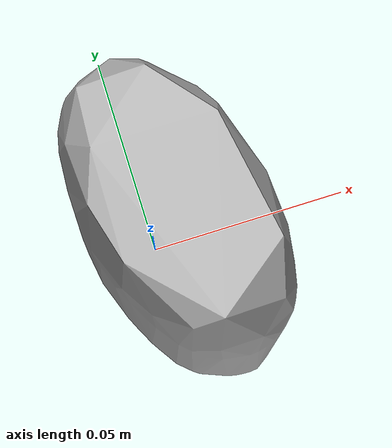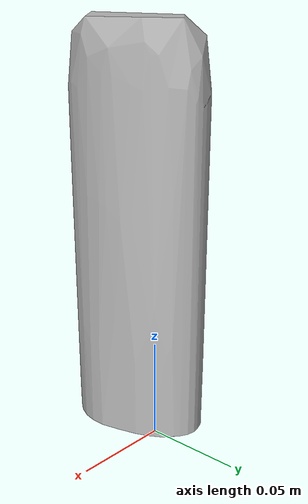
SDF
<?xml version='1.0'?>
<sdf version="1.4">
  <model name="suave_sweet_guava_nectar_body_wash">
    <static>false</static>
    <link name="link">
      <inertial>
        <pose>0.006483597067130071 -0.00506054745110456 0.10315182797072935 -3.1415394111120056 0.002940219235359369 -2.888212209699006</pose>
        <mass>0.05270228161972665</mass>
        <inertia>
          <ixx>0.0001982693481140818</ixx>
          <ixy>1.537153738528384e-20</ixy>
          <ixz>-1.2218512662173975e-21</ixz>
          <iyy>0.0001881504291468228</iyy>
          <iyz>5.090983067735382e-21</iyz>
          <izz>2.395225027241932e-05</izz>
        </inertia>
      </inertial>
      <collision name="collision">
        <geometry>
          <mesh>
            <!-- Use a downsampled mesh for collisions -->
            <uri>model:///suave_sweet_guava_nectar_body_wash/suave_sweet_guava_nectar_body_wash_250_collision.obj</uri>
	        </mesh>
        </geometry>
        <surface>
      </surface>
      </collision>
      <visual name="visual">
        <geometry>
          <mesh>
            <uri>model:///suave_sweet_guava_nectar_body_wash/optimized_tsdf_texture_mapped_mesh.obj</uri>
	        </mesh>
        </geometry>
        <material>
          <script>
            <uri>model:///suave_sweet_guava_nectar_body_wash/suave_sweet_guava_nectar_body_wash.material</uri>
            <name>suave_sweet_guava_nectar_body_wash</name>
          </script>
        </material>
      </visual>
    </link>
  </model>
</sdf>
